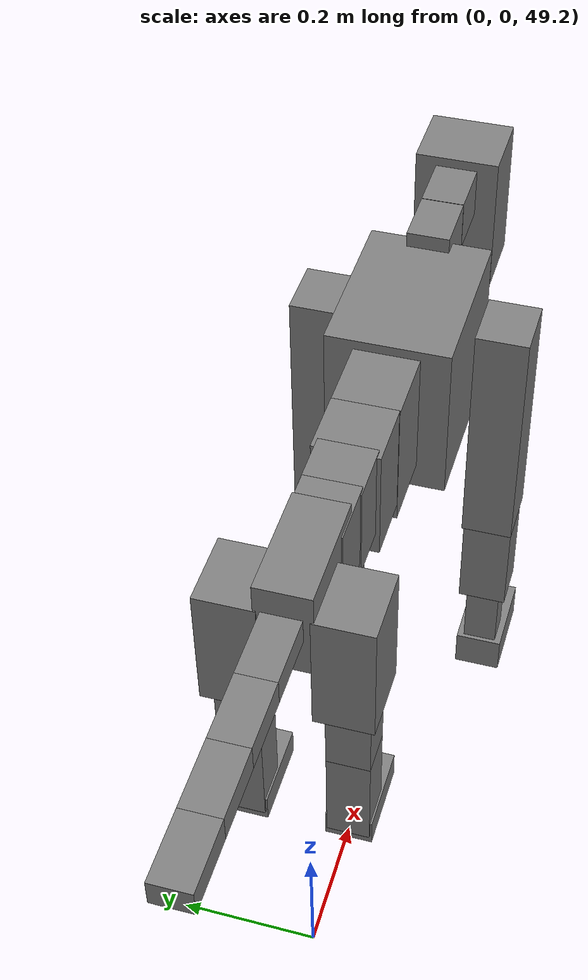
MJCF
<mujoco model="dog">

    <default>
        <joint armature="0.02" stiffness="1" damping="0.2" limited="true"/>
        <geom condim="3" friction="1 0.05 0.05" margin="0.01"/>
        <motor ctrllimited="true" ctrlrange="-1.0 1.0" forcelimited="true" gear="50"/>
    </default>

    <compiler inertiafromgeom="true" angle="radian"/>

    <option timestep="0.016" iterations="50" tolerance="1e-10" solver="Newton" jacobian="dense" cone="pyramidal"/>

    <size nconmax="20000" njmax="60000" nstack="5000000"/>
    <visual>
        <map force="0.1" zfar="30"/>
        <rgba haze="0.15 0.25 0.35 1"/>
        <quality shadowsize="2048"/>
        <global offwidth="800" offheight="800"/>
    </visual>

    <asset>
        <texture type="skybox" builtin="gradient" rgb1="0.3 0.5 0.7" rgb2="0 0 0" width="512" height="512"/>
        <texture name="texplane" type="2d" builtin="checker" rgb1=".2 .3 .4" rgb2=".1 0.15 0.2" width="512" height="512"
                 mark="cross" markrgb=".8 .8 .8"/>
        <texture name="texgeom" type="cube" builtin="flat" mark="cross" width="127" height="1278" rgb1="0.8 0.6 0.4"
                 rgb2="0.8 0.6 0.4" markrgb="1 1 1" random="0.01"/>

        <material name="matplane" reflectance="0.3" texture="texplane" texrepeat="1 1" texuniform="true"/>
        <material name="matgeom" texture="texgeom" texuniform="true" rgba="0.8 0.6 .4 1"/>
    </asset>

    <worldbody>
        <geom name="floor" pos="0 0 0" size="0 0 .25" type="plane" material="matplane" condim="3"/>

        <light directional="false" diffuse=".2 .2 .2" specular="0 0 0" pos="0 0 5" dir="0 0 -1" castshadow="false"/>
        <light mode="targetbodycom" target="torso" directional="false" diffuse=".8 .8 .8" specular="0.3 0.3 0.3"
               pos="0 0 4.0" dir="0 0 -1"/>

        <body name="root" pos="0 0 50">
            <freejoint name="root_1"/>
            <geom type="box" pos="0 0 -0.02" size="0.0774  0.0358  0.063" density="2030"/>

            <body name="spine1" pos="0.054 0 0">
                <joint name="spine1_y" axis="0 1 0" range="0 0.7" limited="true"/>
                <geom type="box" pos="0.02375 0 -0.03" size="0.04375  0.0375  0.05985" density="2030"/>

                <body name="spine2" pos="0.0612 0 0">
                    <joint name="spine2_y" axis="0 1 0" range="-0.15 0.15" limited="true"/>
                    <geom type="box" pos="0.03555  0  -0.04" size="0.04055  0.039  0.06615" density="2030"/>

                    <body name="spine3" pos="0.0730 0 0">
                        <joint name="spine3_y" axis="0 1 0" range="-0.15 0.15" limited="true"/>
                        <geom type="box" pos="0.03555  0  -0.057" size="0.04555  0.0445  0.081" density="2030"/>

                        <body name="spine4" pos="0.0780 0 0">
                            <joint name="spine4_y" axis="0 1 0" range="-0.15 0.15" limited="true"/>
                            <geom type="box" pos="0.05265  0  -0.07" size="0.05265  0.045  0.09135" density="2030"/>

                            <body name="torso" pos="0.1082 0 0">
                                <joint name="torso_y" axis="0 1 0" range="-0.15 0.15" limited="true"/>
                                <geom type="box" pos="0.11925  0  -0.085" size="0.11925  0.085  0.11745"
                                      density="2030"/>

                                <body name="neck1" pos="0.2160  0   0.0180">
                                    <joint name="neck1_y" axis="0 1 0" range="-1.2  -1" limited="true"/>
                                    <geom type="box" pos="0.0423  0  0" size="0.0423  0.03  0.036" density="2325"/>

                                    <body name="neck2" pos="0.0853  0  0">
                                        <joint name="neck2_y" axis="0 1 0" range="0.1  0" limited="true"/>
                                        <geom type="box" pos="0.0423  0  0" size="0.0423  0.03  0.036" density="2325"/>

                                        <body name="head" pos="0.0853  0  0">
                                            <joint name="head_y" axis="0 1 0" range="-0.3  -0.2" limited="true"/>
                                            <geom type="box" pos="0.0531  0  -0.055" size="0.0531  0.06  0.1044"
                                                  density="4030"/>

                                        </body>
                                    </body>
                                </body>

                                <body name="front_shoulder" pos="0.156  0   -0.0480">
                                    <joint name="front_shoulder_y" axis="0 1 0" range="-1 1.5" limited="true"/>
                                    <geom type="box" pos="0 0.13 -0.1546" size="0.0436  0.0372  0.1813" density="1158"/>
                                    <geom type="box" pos="0 -0.13 -0.1546" size="0.0436  0.0372  0.1813"
                                          density="1158"/>

                                    <body name="front_elbow" pos="0  0  -0.3092">
                                        <joint name="front_elbow_y" axis="0 1 0" range="-2 0" limited="true"/>
                                        <geom type="box" pos="0 0.13 -0.0905" size="0.0349  0.0357  0.0905"
                                              density="1081"/>
                                        <geom type="box" pos="0 -0.13 -0.0905" size="0.0349  0.0357  0.0905"
                                              density="1081"/>

                                        <body name="front_wrist" pos="0  0  -0.1811">
                                            <joint name="front_wrist_y" axis="0 1 0" range="-0.2 0" limited="true"/>
                                            <geom type="box" pos="0 0.13 -0.0608" size="0.0227  0.0252  0.0739"
                                                  density="1664"/>
                                            <geom type="box" pos="0 -0.13 -0.0608" size="0.0227  0.0252  0.0739"
                                                  density="1664"/>

                                            <body name="front_finger_end" pos="0  0  -0.1215">
                                                <joint name="front_finger_y" axis="0 1 0" range="-0.4 1"
                                                       limited="true"/>
                                                <geom type="box" pos="0.0350  0.13  -0.0146"
                                                      size="0.0641  0.0350  0.0296" density="1515"/>
                                                <geom type="box" pos="0.0350  -0.13  -0.0146"
                                                      size="0.0641  0.0350  0.0296" density="1515"/>

                                            </body>

                                        </body>
                                    </body>
                                </body>

                            </body>
                        </body>
                    </body>
                </body>
            </body>

            <body name="back_hip" pos="-0.03 0 -0.018">
                <joint name="back_hip_y" axis="0 1 0" range="-1.5 0.3" limited="true"/>
                <geom type="box" pos="0 0.07 -0.0643" size="0.0488  0.0383  0.0871" density="1154"/>
                <geom type="box" pos="0 -0.07 -0.0643" size="0.0488  0.0383  0.0871" density="1154"/>

                <body name="back_knee" pos="0  0  -0.1286">
                    <joint name="back_knee_y" axis="0 1 0" range="0 2.8" limited="true"/>
                    <geom type="box" pos="0 0.07 -0.0541" size="0.0289  0.0285  0.0697" density="1227"/>
                    <geom type="box" pos="0 -0.07 -0.0541" size="0.0289  0.0285  0.0697" density="1227"/>

                    <body name="back_ankle" pos="0  0  -0.1082">
                        <joint name="back_ankle_y" axis="0 1 0" range="-2.2 0" limited="true"/>
                        <geom type="box" pos="0 0.07 -0.0741" size="0.0284  0.0284  0.0854" density="1284"/>
                        <geom type="box" pos="0 -0.07 -0.0741" size="0.0284  0.0284  0.0854" density="1284"/>

                        <body name="back_toe_end" pos="0  0  -0.1483">
                            <joint name="back_toe_y" axis="0 1 0" range="-0.4 1" limited="true"/>
                            <geom type="box" pos="0.0309  0.07  -0.0046" size="0.0566  0.0309  0.0196" density="1515"/>
                            <geom type="box" pos="0.0309  -0.07  -0.0046" size="0.0566  0.0309  0.0196" density="1515"/>

                        </body>
                    </body>
                </body>
            </body>

            <body name="tail1" pos="-0.074 0 -0.006">
                <joint name="tail1_y" axis="0 1 0" range="-0.2 0.2" limited="true"/>
                <geom type="box" pos="-0.0536  0  0" size="0.045  0.025  0.0175" density="1587"/>

                <body name="tail2" pos="-0.09 0 0">
                    <joint name="tail2_y" axis="0 1 0" range="-0.2 0.2" limited="true"/>
                    <geom type="box" pos="-0.0536  0  0" size="0.045  0.025  0.0175" density="1587"/>

                    <body name="tail3" pos="-0.09 0 0">
                        <joint name="tail3_y" axis="0 1 0" range="-0.2 0.2" limited="true"/>
                        <geom type="box" pos="-0.0536  0  0" size="0.045  0.025  0.0175" density="1587"/>

                        <body name="tail4" pos="-0.09 0 0">
                            <joint name="tail4_y" axis="0 1 0" range="-0.2 0.2" limited="true"/>
                            <geom type="box" pos="-0.0536  0  0" size="0.045  0.025  0.0175" density="1587"/>

                        </body>
                    </body>
                </body>
            </body>
        </body>
    </worldbody>

    <actuator>
        <motor joint="spine1_y" forcerange="-150 150     "/>
        <motor joint="spine2_y" forcerange="-150 150     "/>
        <motor joint="spine3_y" forcerange="-150 150     "/>
        <motor joint="spine4_y" forcerange="-150 150     "/>
        <motor joint="torso_y" forcerange="-150 150     "/>
        <motor joint="neck1_y" forcerange="-100 100       "/>
        <motor joint="neck2_y" forcerange="-100 100       "/>
        <motor joint="head_y" forcerange="-150 150       "/>
        <motor joint="front_shoulder_y" forcerange="-163.29 184.87"/>
        <motor joint="front_elbow_y" forcerange="-182.29 177.30"/>
        <motor joint="front_wrist_y" forcerange="-134.86 66.54"/>
        <motor joint="front_finger_y" forcerange="-81.72 64.79"/>
        <motor joint="back_hip_y" forcerange="-392.34 318.46"/>
        <motor joint="back_knee_y" forcerange="-336.13 278.19"/>
        <motor joint="back_angle_y" forcerange="-209.40 144.40"/>
        <motor joint="back_toe_y" forcerange="-33.96 133.08"/>
        <motor joint="tail1_y" forcerange="-50 50     "/>
        <motor joint="tail2_y" forcerange="-50 50     "/>
        <motor joint="tail3_y" forcerange="-50 50     "/>
        <motor joint="tail4_y" forcerange="-50 50     "/>
    </actuator>
</mujoco>
